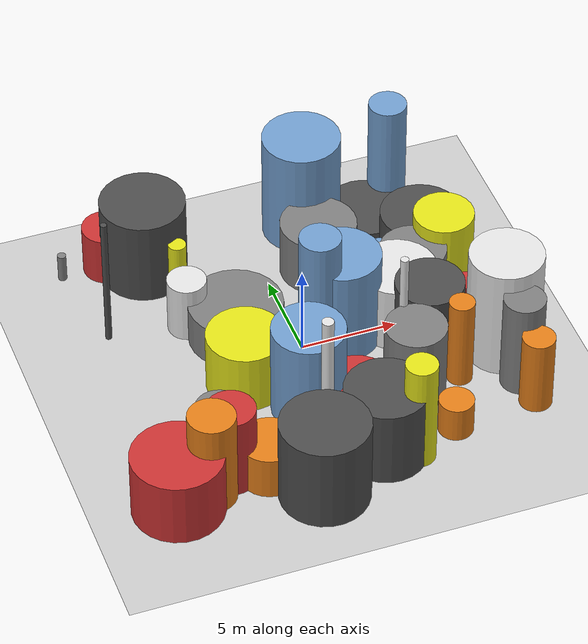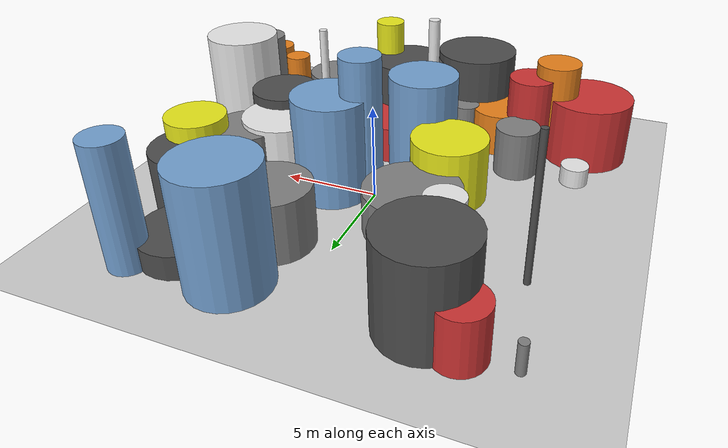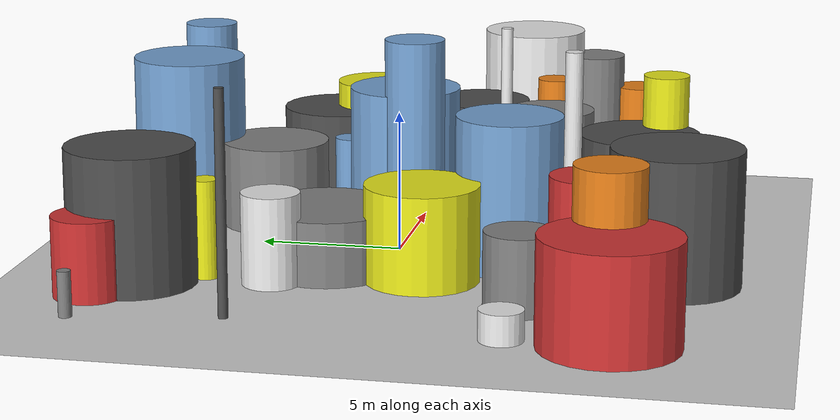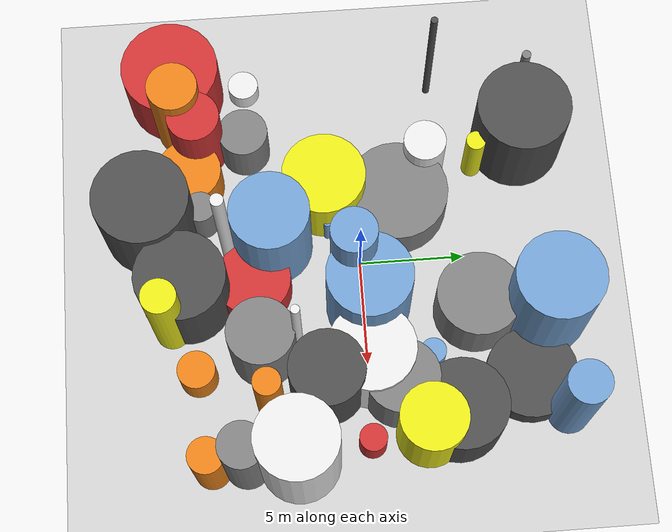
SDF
<?xml version='1.0'?>
<sdf version='1.6'>
  <world name='default'>
    <!-- Sun light -->
    <light name='sun' type='directional'>
      <cast_shadows>1</cast_shadows>
      <pose>0 0 10 0 0 0</pose>
      <diffuse>0.8 0.8 0.8 1</diffuse>
      <specular>0.2 0.2 0.2 1</specular>
      <attenuation>
        <range>1000</range>
        <constant>0.9</constant>
        <linear>0.01</linear>
        <quadratic>0.001</quadratic>
      </attenuation>
      <direction>-0.5 0.1 -0.9</direction>
    </light>

    <!-- Ground plane -->
    <model name='ground_plane'>
      <static>1</static>
      <link name='link'>
        <collision name='collision'>
          <geometry>
            <plane>
              <normal>0 0 1</normal>
              <size>100 100</size>
            </plane>
          </geometry>
          <surface>
            <contact>
              <collide_bitmask>65535</collide_bitmask>
              <ode/>
            </contact>
            <friction>
              <ode>
                <mu>100</mu>
                <mu2>50</mu2>
              </ode>
              <torsional><ode/></torsional>
            </friction>
            <bounce/>
          </surface>
          <max_contacts>10</max_contacts>
        </collision>
        <visual name='visual'>
          <cast_shadows>0</cast_shadows>
          <geometry>
            <plane>
              <normal>0 0 1</normal>
              <size>100 100</size>
            </plane>
          </geometry>
          <material>
            <script>
              <uri>file://media/materials/scripts/gazebo.material</uri>
              <n>Gazebo/Grey</n>
            </script>
          </material>
        </visual>
      </link>
    </model>

    <!-- Environment -->
    <magnetic_field>6e-06 2.3e-05 -4.2e-05</magnetic_field>
    <atmosphere type='adiabatic'/>
    <physics name='default_physics' default='0' type='ode'>
      <gravity>0 0 -9.8</gravity>
      <max_step_size>0.004</max_step_size>
      <real_time_factor>1</real_time_factor>
      <real_time_update_rate>250</real_time_update_rate>
    </physics>
    <scene>
      <ambient>0.4 0.4 0.4 1</ambient>
      <background>0.7 0.7 0.7 1</background>
      <shadows>1</shadows>
    </scene>
    <wind/>
    <spherical_coordinates>
      <surface_model>EARTH_WGS84</surface_model>
      <latitude_deg>0</latitude_deg>
      <longitude_deg>0</longitude_deg>
      <elevation>0</elevation>
      <heading_deg>0</heading_deg>
    </spherical_coordinates>

    <!-- ============ OBSTACLES (42) ============ -->
    <model name='obs_00'>
      <static>1</static>
      <link name='link'>
        <visual name='visual'>
          <geometry>
            <cylinder>
              <radius>2.0432</radius>
              <length>6.1090</length>
            </cylinder>
          </geometry>
          <material>
            <script>
              <n>Gazebo/Blue</n>
              <uri>file://media/materials/scripts/gazebo.material</uri>
            </script>
            <ambient>0.447 0.624 0.812 1</ambient>
          </material>
        </visual>
        <collision name='collision'>
          <geometry>
            <cylinder>
              <radius>2.0432</radius>
              <length>6.1090</length>
            </cylinder>
          </geometry>
          <max_contacts>10</max_contacts>
          <surface>
            <contact><ode/></contact>
            <bounce/>
            <friction>
              <ode><mu>1</mu><mu2>1</mu2></ode>
              <torsional><ode/></torsional>
            </friction>
          </surface>
        </collision>
      </link>
      <pose>3.0777 8.6087 3.0545 0 0 2.9096</pose>
    </model>

    <model name='obs_01'>
      <static>1</static>
      <link name='link'>
        <visual name='visual'>
          <geometry>
            <cylinder>
              <radius>1.7703</radius>
              <length>4.3012</length>
            </cylinder>
          </geometry>
          <material>
            <script>
              <n>Gazebo/DarkGrey</n>
              <uri>file://media/materials/scripts/gazebo.material</uri>
            </script>
            <ambient>0.3 0.3 0.3 1</ambient>
          </material>
        </visual>
        <collision name='collision'>
          <geometry>
            <cylinder>
              <radius>1.7703</radius>
              <length>4.3012</length>
            </cylinder>
          </geometry>
          <max_contacts>10</max_contacts>
          <surface>
            <contact><ode/></contact>
            <bounce/>
            <friction>
              <ode><mu>1</mu><mu2>1</mu2></ode>
              <torsional><ode/></torsional>
            </friction>
          </surface>
        </collision>
      </link>
      <pose>6.0342 -1.9698 2.1506 0 0 0.6632</pose>
    </model>

    <model name='obs_02'>
      <static>1</static>
      <link name='link'>
        <visual name='visual'>
          <geometry>
            <cylinder>
              <radius>0.1864</radius>
              <length>1.8004</length>
            </cylinder>
          </geometry>
          <material>
            <script>
              <n>Gazebo/Blue</n>
              <uri>file://media/materials/scripts/gazebo.material</uri>
            </script>
            <ambient>0.447 0.624 0.812 1</ambient>
          </material>
        </visual>
        <collision name='collision'>
          <geometry>
            <cylinder>
              <radius>0.1864</radius>
              <length>1.8004</length>
            </cylinder>
          </geometry>
          <max_contacts>10</max_contacts>
          <surface>
            <contact><ode/></contact>
            <bounce/>
            <friction>
              <ode><mu>1</mu><mu2>1</mu2></ode>
              <torsional><ode/></torsional>
            </friction>
          </surface>
        </collision>
      </link>
      <pose>-1.5843 -1.4482 0.9002 0 0 0.8063</pose>
    </model>

    <model name='obs_03'>
      <static>1</static>
      <link name='link'>
        <visual name='visual'>
          <geometry>
            <cylinder>
              <radius>1.9931</radius>
              <length>5.4755</length>
            </cylinder>
          </geometry>
          <material>
            <script>
              <n>Gazebo/Blue</n>
              <uri>file://media/materials/scripts/gazebo.material</uri>
            </script>
            <ambient>0.447 0.624 0.812 1</ambient>
          </material>
        </visual>
        <collision name='collision'>
          <geometry>
            <cylinder>
              <radius>1.9931</radius>
              <length>5.4755</length>
            </cylinder>
          </geometry>
          <max_contacts>10</max_contacts>
          <surface>
            <contact><ode/></contact>
            <bounce/>
            <friction>
              <ode><mu>1</mu><mu2>1</mu2></ode>
              <torsional><ode/></torsional>
            </friction>
          </surface>
        </collision>
      </link>
      <pose>2.2066 0.2264 2.7378 0 0 1.8847</pose>
    </model>

    <model name='obs_04'>
      <static>1</static>
      <link name='link'>
        <visual name='visual'>
          <geometry>
            <cylinder>
              <radius>1.5647</radius>
              <length>4.3162</length>
            </cylinder>
          </geometry>
          <material>
            <script>
              <n>Gazebo/Yellow</n>
              <uri>file://media/materials/scripts/gazebo.material</uri>
            </script>
            <ambient>0.9 0.9 0.1 1</ambient>
          </material>
        </visual>
        <collision name='collision'>
          <geometry>
            <cylinder>
              <radius>1.5647</radius>
              <length>4.3162</length>
            </cylinder>
          </geometry>
          <max_contacts>10</max_contacts>
          <surface>
            <contact><ode/></contact>
            <bounce/>
            <friction>
              <ode><mu>1</mu><mu2>1</mu2></ode>
              <torsional><ode/></torsional>
            </friction>
          </surface>
        </collision>
      </link>
      <pose>8.5777 2.5949 2.1581 0 0 2.2071</pose>
    </model>

    <model name='obs_05'>
      <static>1</static>
      <link name='link'>
        <visual name='visual'>
          <geometry>
            <cylinder>
              <radius>0.9963</radius>
              <length>6.4762</length>
            </cylinder>
          </geometry>
          <material>
            <script>
              <n>Gazebo/Blue</n>
              <uri>file://media/materials/scripts/gazebo.material</uri>
            </script>
            <ambient>0.447 0.624 0.812 1</ambient>
          </material>
        </visual>
        <collision name='collision'>
          <geometry>
            <cylinder>
              <radius>0.9963</radius>
              <length>6.4762</length>
            </cylinder>
          </geometry>
          <max_contacts>10</max_contacts>
          <surface>
            <contact><ode/></contact>
            <bounce/>
            <friction>
              <ode><mu>1</mu><mu2>1</mu2></ode>
              <torsional><ode/></torsional>
            </friction>
          </surface>
        </collision>
      </link>
      <pose>8.0127 9.1783 3.2381 0 0 2.4657</pose>
    </model>

    <model name='obs_06'>
      <static>1</static>
      <link name='link'>
        <visual name='visual'>
          <geometry>
            <cylinder>
              <radius>1.2454</radius>
              <length>4.6621</length>
            </cylinder>
          </geometry>
          <material>
            <script>
              <n>Gazebo/Red</n>
              <uri>file://media/materials/scripts/gazebo.material</uri>
            </script>
            <ambient>0.8 0.2 0.2 1</ambient>
          </material>
        </visual>
        <collision name='collision'>
          <geometry>
            <cylinder>
              <radius>1.2454</radius>
              <length>4.6621</length>
            </cylinder>
          </geometry>
          <max_contacts>10</max_contacts>
          <surface>
            <contact><ode/></contact>
            <bounce/>
            <friction>
              <ode><mu>1</mu><mu2>1</mu2></ode>
              <torsional><ode/></torsional>
            </friction>
          </surface>
        </collision>
      </link>
      <pose>-6.2945 -7.4068 2.3311 0 0 3.0447</pose>
    </model>

    <model name='obs_07'>
      <static>1</static>
      <link name='link'>
        <visual name='visual'>
          <geometry>
            <cylinder>
              <radius>1.0681</radius>
              <length>5.5024</length>
            </cylinder>
          </geometry>
          <material>
            <script>
              <n>Gazebo/Grey</n>
              <uri>file://media/materials/scripts/gazebo.material</uri>
            </script>
            <ambient>0.5 0.5 0.5 1</ambient>
          </material>
        </visual>
        <collision name='collision'>
          <geometry>
            <cylinder>
              <radius>1.0681</radius>
              <length>5.5024</length>
            </cylinder>
          </geometry>
          <max_contacts>10</max_contacts>
          <surface>
            <contact><ode/></contact>
            <bounce/>
            <friction>
              <ode><mu>1</mu><mu2>1</mu2></ode>
              <torsional><ode/></torsional>
            </friction>
          </surface>
        </collision>
      </link>
      <pose>9.4560 -5.8958 2.7512 0 0 0.5379</pose>
    </model>

    <model name='obs_08'>
      <static>1</static>
      <link name='link'>
        <visual name='visual'>
          <geometry>
            <cylinder>
              <radius>1.2245</radius>
              <length>2.7718</length>
            </cylinder>
          </geometry>
          <material>
            <script>
              <n>Gazebo/Red</n>
              <uri>file://media/materials/scripts/gazebo.material</uri>
            </script>
            <ambient>0.8 0.2 0.2 1</ambient>
          </material>
        </visual>
        <collision name='collision'>
          <geometry>
            <cylinder>
              <radius>1.2245</radius>
              <length>2.7718</length>
            </cylinder>
          </geometry>
          <max_contacts>10</max_contacts>
          <surface>
            <contact><ode/></contact>
            <bounce/>
            <friction>
              <ode><mu>1</mu><mu2>1</mu2></ode>
              <torsional><ode/></torsional>
            </friction>
          </surface>
        </collision>
      </link>
      <pose>-7.3971 9.0484 1.3859 0 0 0.8294</pose>
    </model>

    <model name='obs_09'>
      <static>1</static>
      <link name='link'>
        <visual name='visual'>
          <geometry>
            <cylinder>
              <radius>2.1305</radius>
              <length>4.3376</length>
            </cylinder>
          </geometry>
          <material>
            <script>
              <n>Gazebo/DarkGrey</n>
              <uri>file://media/materials/scripts/gazebo.material</uri>
            </script>
            <ambient>0.3 0.3 0.3 1</ambient>
          </material>
        </visual>
        <collision name='collision'>
          <geometry>
            <cylinder>
              <radius>2.1305</radius>
              <length>4.3376</length>
            </cylinder>
          </geometry>
          <max_contacts>10</max_contacts>
          <surface>
            <contact><ode/></contact>
            <bounce/>
            <friction>
              <ode><mu>1</mu><mu2>1</mu2></ode>
              <torsional><ode/></torsional>
            </friction>
          </surface>
        </collision>
      </link>
      <pose>1.3070 -8.3431 2.1688 0 0 1.8706</pose>
    </model>

    <model name='obs_10'>
      <static>1</static>
      <link name='link'>
        <visual name='visual'>
          <geometry>
            <cylinder>
              <radius>0.2274</radius>
              <length>1.5534</length>
            </cylinder>
          </geometry>
          <material>
            <script>
              <n>Gazebo/Grey</n>
              <uri>file://media/materials/scripts/gazebo.material</uri>
            </script>
            <ambient>0.5 0.5 0.5 1</ambient>
          </material>
        </visual>
        <collision name='collision'>
          <geometry>
            <cylinder>
              <radius>0.2274</radius>
              <length>1.5534</length>
            </cylinder>
          </geometry>
          <max_contacts>10</max_contacts>
          <surface>
            <contact><ode/></contact>
            <bounce/>
            <friction>
              <ode><mu>1</mu><mu2>1</mu2></ode>
              <torsional><ode/></torsional>
            </friction>
          </surface>
        </collision>
      </link>
      <pose>-9.7852 9.0387 0.7767 0 0 2.9240</pose>
    </model>

    <model name='obs_11'>
      <static>1</static>
      <link name='link'>
        <visual name='visual'>
          <geometry>
            <cylinder>
              <radius>2.3222</radius>
              <length>3.5939</length>
            </cylinder>
          </geometry>
          <material>
            <script>
              <n>Gazebo/Red</n>
              <uri>file://media/materials/scripts/gazebo.material</uri>
            </script>
            <ambient>0.8 0.2 0.2 1</ambient>
          </material>
        </visual>
        <collision name='collision'>
          <geometry>
            <cylinder>
              <radius>2.3222</radius>
              <length>3.5939</length>
            </cylinder>
          </geometry>
          <max_contacts>10</max_contacts>
          <surface>
            <contact><ode/></contact>
            <bounce/>
            <friction>
              <ode><mu>1</mu><mu2>1</mu2></ode>
              <torsional><ode/></torsional>
            </friction>
          </surface>
        </collision>
      </link>
      <pose>-9.3762 -8.5049 1.7970 0 0 0.3620</pose>
    </model>

    <model name='obs_12'>
      <static>1</static>
      <link name='link'>
        <visual name='visual'>
          <geometry>
            <cylinder>
              <radius>0.5927</radius>
              <length>2.7744</length>
            </cylinder>
          </geometry>
          <material>
            <script>
              <n>Gazebo/Blue</n>
              <uri>file://media/materials/scripts/gazebo.material</uri>
            </script>
            <ambient>0.447 0.624 0.812 1</ambient>
          </material>
        </visual>
        <collision name='collision'>
          <geometry>
            <cylinder>
              <radius>0.5927</radius>
              <length>2.7744</length>
            </cylinder>
          </geometry>
          <max_contacts>10</max_contacts>
          <surface>
            <contact><ode/></contact>
            <bounce/>
            <friction>
              <ode><mu>1</mu><mu2>1</mu2></ode>
              <torsional><ode/></torsional>
            </friction>
          </surface>
        </collision>
      </link>
      <pose>5.2472 2.9439 1.3872 0 0 0.2591</pose>
    </model>

    <model name='obs_13'>
      <static>1</static>
      <link name='link'>
        <visual name='visual'>
          <geometry>
            <cylinder>
              <radius>1.0165</radius>
              <length>3.1965</length>
            </cylinder>
          </geometry>
          <material>
            <script>
              <n>Gazebo/White</n>
              <uri>file://media/materials/scripts/gazebo.material</uri>
            </script>
            <ambient>0.9 0.9 0.9 1</ambient>
          </material>
        </visual>
        <collision name='collision'>
          <geometry>
            <cylinder>
              <radius>1.0165</radius>
              <length>3.1965</length>
            </cylinder>
          </geometry>
          <max_contacts>10</max_contacts>
          <surface>
            <contact><ode/></contact>
            <bounce/>
            <friction>
              <ode><mu>1</mu><mu2>1</mu2></ode>
              <torsional><ode/></torsional>
            </friction>
          </surface>
        </collision>
      </link>
      <pose>-4.9013 3.4440 1.5983 0 0 0.2281</pose>
    </model>

    <model name='obs_14'>
      <static>1</static>
      <link name='link'>
        <visual name='visual'>
          <geometry>
            <cylinder>
              <radius>0.4657</radius>
              <length>3.4565</length>
            </cylinder>
          </geometry>
          <material>
            <script>
              <n>Gazebo/Yellow</n>
              <uri>file://media/materials/scripts/gazebo.material</uri>
            </script>
            <ambient>0.9 0.9 0.1 1</ambient>
          </material>
        </visual>
        <collision name='collision'>
          <geometry>
            <cylinder>
              <radius>0.4657</radius>
              <length>3.4565</length>
            </cylinder>
          </geometry>
          <max_contacts>10</max_contacts>
          <surface>
            <contact><ode/></contact>
            <bounce/>
            <friction>
              <ode><mu>1</mu><mu2>1</mu2></ode>
              <torsional><ode/></torsional>
            </friction>
          </surface>
        </collision>
      </link>
      <pose>-4.5987 5.8251 1.7282 0 0 0.6776</pose>
    </model>

    <model name='obs_15'>
      <static>1</static>
      <link name='link'>
        <visual name='visual'>
          <geometry>
            <cylinder>
              <radius>1.8740</radius>
              <length>5.3431</length>
            </cylinder>
          </geometry>
          <material>
            <script>
              <n>Gazebo/Blue</n>
              <uri>file://media/materials/scripts/gazebo.material</uri>
            </script>
            <ambient>0.447 0.624 0.812 1</ambient>
          </material>
        </visual>
        <collision name='collision'>
          <geometry>
            <cylinder>
              <radius>1.8740</radius>
              <length>5.3431</length>
            </cylinder>
          </geometry>
          <max_contacts>10</max_contacts>
          <surface>
            <contact><ode/></contact>
            <bounce/>
            <friction>
              <ode><mu>1</mu><mu2>1</mu2></ode>
              <torsional><ode/></torsional>
            </friction>
          </surface>
        </collision>
      </link>
      <pose>-1.1404 -4.1009 2.6715 0 0 0.9661</pose>
    </model>

    <model name='obs_16'>
      <static>1</static>
      <link name='link'>
        <visual name='visual'>
          <geometry>
            <cylinder>
              <radius>1.9906</radius>
              <length>3.3716</length>
            </cylinder>
          </geometry>
          <material>
            <script>
              <n>Gazebo/Yellow</n>
              <uri>file://media/materials/scripts/gazebo.material</uri>
            </script>
            <ambient>0.9 0.9 0.1 1</ambient>
          </material>
        </visual>
        <collision name='collision'>
          <geometry>
            <cylinder>
              <radius>1.9906</radius>
              <length>3.3716</length>
            </cylinder>
          </geometry>
          <max_contacts>10</max_contacts>
          <surface>
            <contact><ode/></contact>
            <bounce/>
            <friction>
              <ode><mu>1</mu><mu2>1</mu2></ode>
              <torsional><ode/></torsional>
            </friction>
          </surface>
        </collision>
      </link>
      <pose>-3.5080 -1.4826 1.6858 0 0 2.1147</pose>
    </model>

    <model name='obs_17'>
      <static>1</static>
      <link name='link'>
        <visual name='visual'>
          <geometry>
            <cylinder>
              <radius>1.9854</radius>
              <length>3.1469</length>
            </cylinder>
          </geometry>
          <material>
            <script>
              <n>Gazebo/Grey</n>
              <uri>file://media/materials/scripts/gazebo.material</uri>
            </script>
            <ambient>0.5 0.5 0.5 1</ambient>
          </material>
        </visual>
        <collision name='collision'>
          <geometry>
            <cylinder>
              <radius>1.9854</radius>
              <length>3.1469</length>
            </cylinder>
          </geometry>
          <max_contacts>10</max_contacts>
          <surface>
            <contact><ode/></contact>
            <bounce/>
            <friction>
              <ode><mu>1</mu><mu2>1</mu2></ode>
              <torsional><ode/></torsional>
            </friction>
          </surface>
        </collision>
      </link>
      <pose>2.7992 5.2779 1.5734 0 0 2.4322</pose>
    </model>

    <model name='obs_18'>
      <static>1</static>
      <link name='link'>
        <visual name='visual'>
          <geometry>
            <cylinder>
              <radius>2.1057</radius>
              <length>3.3976</length>
            </cylinder>
          </geometry>
          <material>
            <script>
              <n>Gazebo/DarkGrey</n>
              <uri>file://media/materials/scripts/gazebo.material</uri>
            </script>
            <ambient>0.3 0.3 0.3 1</ambient>
          </material>
        </visual>
        <collision name='collision'>
          <geometry>
            <cylinder>
              <radius>2.1057</radius>
              <length>3.3976</length>
            </cylinder>
          </geometry>
          <max_contacts>10</max_contacts>
          <surface>
            <contact><ode/></contact>
            <bounce/>
            <friction>
              <ode><mu>1</mu><mu2>1</mu2></ode>
              <torsional><ode/></torsional>
            </friction>
          </surface>
        </collision>
      </link>
      <pose>7.9047 4.0172 1.6988 0 0 1.5369</pose>
    </model>

    <model name='obs_19'>
      <static>1</static>
      <link name='link'>
        <visual name='visual'>
          <geometry>
            <cylinder>
              <radius>1.1807</radius>
              <length>2.6748</length>
            </cylinder>
          </geometry>
          <material>
            <script>
              <n>Gazebo/Grey</n>
              <uri>file://media/materials/scripts/gazebo.material</uri>
            </script>
            <ambient>0.5 0.5 0.5 1</ambient>
          </material>
        </visual>
        <collision name='collision'>
          <geometry>
            <cylinder>
              <radius>1.1807</radius>
              <length>2.6748</length>
            </cylinder>
          </geometry>
          <max_contacts>10</max_contacts>
          <surface>
            <contact><ode/></contact>
            <bounce/>
            <friction>
              <ode><mu>1</mu><mu2>1</mu2></ode>
              <torsional><ode/></torsional>
            </friction>
          </surface>
        </collision>
      </link>
      <pose>-6.1655 -5.1960 1.3374 0 0 0.6298</pose>
    </model>

    <model name='obs_20'>
      <static>1</static>
      <link name='link'>
        <visual name='visual'>
          <geometry>
            <cylinder>
              <radius>0.8153</radius>
              <length>6.1588</length>
            </cylinder>
          </geometry>
          <material>
            <script>
              <n>Gazebo/Yellow</n>
              <uri>file://media/materials/scripts/gazebo.material</uri>
            </script>
            <ambient>0.9 0.9 0.1 1</ambient>
          </material>
        </visual>
        <collision name='collision'>
          <geometry>
            <cylinder>
              <radius>0.8153</radius>
              <length>6.1588</length>
            </cylinder>
          </geometry>
          <max_contacts>10</max_contacts>
          <surface>
            <contact><ode/></contact>
            <bounce/>
            <friction>
              <ode><mu>1</mu><mu2>1</mu2></ode>
              <torsional><ode/></torsional>
            </friction>
          </surface>
        </collision>
      </link>
      <pose>2.7895 -9.1240 3.0794 0 0 0.9517</pose>
    </model>

    <model name='obs_21'>
      <static>1</static>
      <link name='link'>
        <visual name='visual'>
          <geometry>
            <cylinder>
              <radius>1.9094</radius>
              <length>6.4029</length>
            </cylinder>
          </geometry>
          <material>
            <script>
              <n>Gazebo/White</n>
              <uri>file://media/materials/scripts/gazebo.material</uri>
            </script>
            <ambient>0.9 0.9 0.9 1</ambient>
          </material>
        </visual>
        <collision name='collision'>
          <geometry>
            <cylinder>
              <radius>1.9094</radius>
              <length>6.4029</length>
            </cylinder>
          </geometry>
          <max_contacts>10</max_contacts>
          <surface>
            <contact><ode/></contact>
            <bounce/>
            <friction>
              <ode><mu>1</mu><mu2>1</mu2></ode>
              <torsional><ode/></torsional>
            </friction>
          </surface>
        </collision>
      </link>
      <pose>9.4625 -3.4752 3.2015 0 0 0.3269</pose>
    </model>

    <model name='obs_22'>
      <static>1</static>
      <link name='link'>
        <visual name='visual'>
          <geometry>
            <cylinder>
              <radius>0.6537</radius>
              <length>5.0721</length>
            </cylinder>
          </geometry>
          <material>
            <script>
              <n>Gazebo/Orange</n>
              <uri>file://media/materials/scripts/gazebo.material</uri>
            </script>
            <ambient>0.9 0.5 0.1 1</ambient>
          </material>
        </visual>
        <collision name='collision'>
          <geometry>
            <cylinder>
              <radius>0.6537</radius>
              <length>5.0721</length>
            </cylinder>
          </geometry>
          <max_contacts>10</max_contacts>
          <surface>
            <contact><ode/></contact>
            <bounce/>
            <friction>
              <ode><mu>1</mu><mu2>1</mu2></ode>
              <torsional><ode/></torsional>
            </friction>
          </surface>
        </collision>
      </link>
      <pose>6.6671 -4.6529 2.5360 0 0 0.5393</pose>
    </model>

    <model name='obs_23'>
      <static>1</static>
      <link name='link'>
        <visual name='visual'>
          <geometry>
            <cylinder>
              <radius>0.2107</radius>
              <length>7.3904</length>
            </cylinder>
          </geometry>
          <material>
            <script>
              <n>Gazebo/White</n>
              <uri>file://media/materials/scripts/gazebo.material</uri>
            </script>
            <ambient>0.9 0.9 0.9 1</ambient>
          </material>
        </visual>
        <collision name='collision'>
          <geometry>
            <cylinder>
              <radius>0.2107</radius>
              <length>7.3904</length>
            </cylinder>
          </geometry>
          <max_contacts>10</max_contacts>
          <surface>
            <contact><ode/></contact>
            <bounce/>
            <friction>
              <ode><mu>1</mu><mu2>1</mu2></ode>
              <torsional><ode/></torsional>
            </friction>
          </surface>
        </collision>
      </link>
      <pose>4.1703 -3.1747 3.6952 0 0 3.0241</pose>
    </model>

    <model name='obs_24'>
      <static>1</static>
      <link name='link'>
        <visual name='visual'>
          <geometry>
            <cylinder>
              <radius>0.7399</radius>
              <length>1.0232</length>
            </cylinder>
          </geometry>
          <material>
            <script>
              <n>Gazebo/White</n>
              <uri>file://media/materials/scripts/gazebo.material</uri>
            </script>
            <ambient>0.9 0.9 0.9 1</ambient>
          </material>
        </visual>
        <collision name='collision'>
          <geometry>
            <cylinder>
              <radius>0.7399</radius>
              <length>1.0232</length>
            </cylinder>
          </geometry>
          <max_contacts>10</max_contacts>
          <surface>
            <contact><ode/></contact>
            <bounce/>
            <friction>
              <ode><mu>1</mu><mu2>1</mu2></ode>
              <torsional><ode/></torsional>
            </friction>
          </surface>
        </collision>
      </link>
      <pose>-9.3796 -5.1335 0.5116 0 0 1.0069</pose>
    </model>

    <model name='obs_25'>
      <static>1</static>
      <link name='link'>
        <visual name='visual'>
          <geometry>
            <cylinder>
              <radius>1.7750</radius>
              <length>2.0332</length>
            </cylinder>
          </geometry>
          <material>
            <script>
              <n>Gazebo/Red</n>
              <uri>file://media/materials/scripts/gazebo.material</uri>
            </script>
            <ambient>0.8 0.2 0.2 1</ambient>
          </material>
        </visual>
        <collision name='collision'>
          <geometry>
            <cylinder>
              <radius>1.7750</radius>
              <length>2.0332</length>
            </cylinder>
          </geometry>
          <max_contacts>10</max_contacts>
          <surface>
            <contact><ode/></contact>
            <bounce/>
            <friction>
              <ode><mu>1</mu><mu2>1</mu2></ode>
              <torsional><ode/></torsional>
            </friction>
          </surface>
        </collision>
      </link>
      <pose>1.0102 -5.1159 1.0166 0 0 1.2914</pose>
    </model>

    <model name='obs_26'>
      <static>1</static>
      <link name='link'>
        <visual name='visual'>
          <geometry>
            <cylinder>
              <radius>2.2234</radius>
              <length>4.7854</length>
            </cylinder>
          </geometry>
          <material>
            <script>
              <n>Gazebo/DarkGrey</n>
              <uri>file://media/materials/scripts/gazebo.material</uri>
            </script>
            <ambient>0.3 0.3 0.3 1</ambient>
          </material>
        </visual>
        <collision name='collision'>
          <geometry>
            <cylinder>
              <radius>2.2234</radius>
              <length>4.7854</length>
            </cylinder>
          </geometry>
          <max_contacts>10</max_contacts>
          <surface>
            <contact><ode/></contact>
            <bounce/>
            <friction>
              <ode><mu>1</mu><mu2>1</mu2></ode>
              <torsional><ode/></torsional>
            </friction>
          </surface>
        </collision>
      </link>
      <pose>-5.6692 8.0975 2.3927 0 0 1.1516</pose>
    </model>

    <model name='obs_27'>
      <static>1</static>
      <link name='link'>
        <visual name='visual'>
          <geometry>
            <cylinder>
              <radius>0.1673</radius>
              <length>7.5824</length>
            </cylinder>
          </geometry>
          <material>
            <script>
              <n>Gazebo/DarkGrey</n>
              <uri>file://media/materials/scripts/gazebo.material</uri>
            </script>
            <ambient>0.3 0.3 0.3 1</ambient>
          </material>
        </visual>
        <collision name='collision'>
          <geometry>
            <cylinder>
              <radius>0.1673</radius>
              <length>7.5824</length>
            </cylinder>
          </geometry>
          <max_contacts>10</max_contacts>
          <surface>
            <contact><ode/></contact>
            <bounce/>
            <friction>
              <ode><mu>1</mu><mu2>1</mu2></ode>
              <torsional><ode/></torsional>
            </friction>
          </surface>
        </collision>
      </link>
      <pose>-8.9100 3.9967 3.7912 0 0 2.0217</pose>
    </model>

    <model name='obs_28'>
      <static>1</static>
      <link name='link'>
        <visual name='visual'>
          <geometry>
            <cylinder>
              <radius>1.2007</radius>
              <length>5.3733</length>
            </cylinder>
          </geometry>
          <material>
            <script>
              <n>Gazebo/Orange</n>
              <uri>file://media/materials/scripts/gazebo.material</uri>
            </script>
            <ambient>0.9 0.5 0.1 1</ambient>
          </material>
        </visual>
        <collision name='collision'>
          <geometry>
            <cylinder>
              <radius>1.2007</radius>
              <length>5.3733</length>
            </cylinder>
          </geometry>
          <max_contacts>10</max_contacts>
          <surface>
            <contact><ode/></contact>
            <bounce/>
            <friction>
              <ode><mu>1</mu><mu2>1</mu2></ode>
              <torsional><ode/></torsional>
            </friction>
          </surface>
        </collision>
      </link>
      <pose>-7.5416 -8.2638 2.6866 0 0 1.7876</pose>
    </model>

    <model name='obs_29'>
      <static>1</static>
      <link name='link'>
        <visual name='visual'>
          <geometry>
            <cylinder>
              <radius>2.4358</radius>
              <length>2.2677</length>
            </cylinder>
          </geometry>
          <material>
            <script>
              <n>Gazebo/Grey</n>
              <uri>file://media/materials/scripts/gazebo.material</uri>
            </script>
            <ambient>0.5 0.5 0.5 1</ambient>
          </material>
        </visual>
        <collision name='collision'>
          <geometry>
            <cylinder>
              <radius>2.4358</radius>
              <length>2.2677</length>
            </cylinder>
          </geometry>
          <max_contacts>10</max_contacts>
          <surface>
            <contact><ode/></contact>
            <bounce/>
            <friction>
              <ode><mu>1</mu><mu2>1</mu2></ode>
              <torsional><ode/></torsional>
            </friction>
          </surface>
        </collision>
      </link>
      <pose>-2.8249 1.9654 1.1338 0 0 0.7275</pose>
    </model>

    <model name='obs_30'>
      <static>1</static>
      <link name='link'>
        <visual name='visual'>
          <geometry>
            <cylinder>
              <radius>2.1472</radius>
              <length>1.2834</length>
            </cylinder>
          </geometry>
          <material>
            <script>
              <n>Gazebo/DarkGrey</n>
              <uri>file://media/materials/scripts/gazebo.material</uri>
            </script>
            <ambient>0.3 0.3 0.3 1</ambient>
          </material>
        </visual>
        <collision name='collision'>
          <geometry>
            <cylinder>
              <radius>2.1472</radius>
              <length>1.2834</length>
            </cylinder>
          </geometry>
          <max_contacts>10</max_contacts>
          <surface>
            <contact><ode/></contact>
            <bounce/>
            <friction>
              <ode><mu>1</mu><mu2>1</mu2></ode>
              <torsional><ode/></torsional>
            </friction>
          </surface>
        </collision>
      </link>
      <pose>6.2273 7.5348 0.6417 0 0 2.0936</pose>
    </model>

    <model name='obs_31'>
      <static>1</static>
      <link name='link'>
        <visual name='visual'>
          <geometry>
            <cylinder>
              <radius>0.8386</radius>
              <length>4.3124</length>
            </cylinder>
          </geometry>
          <material>
            <script>
              <n>Gazebo/Orange</n>
              <uri>file://media/materials/scripts/gazebo.material</uri>
            </script>
            <ambient>0.9 0.5 0.1 1</ambient>
          </material>
        </visual>
        <collision name='collision'>
          <geometry>
            <cylinder>
              <radius>0.8386</radius>
              <length>4.3124</length>
            </cylinder>
          </geometry>
          <max_contacts>10</max_contacts>
          <surface>
            <contact><ode/></contact>
            <bounce/>
            <friction>
              <ode><mu>1</mu><mu2>1</mu2></ode>
              <torsional><ode/></torsional>
            </friction>
          </surface>
        </collision>
      </link>
      <pose>9.5815 -7.5136 2.1562 0 0 3.0774</pose>
    </model>

    <model name='obs_32'>
      <static>1</static>
      <link name='link'>
        <visual name='visual'>
          <geometry>
            <cylinder>
              <radius>0.7498</radius>
              <length>2.4123</length>
            </cylinder>
          </geometry>
          <material>
            <script>
              <n>Gazebo/Grey</n>
              <uri>file://media/materials/scripts/gazebo.material</uri>
            </script>
            <ambient>0.5 0.5 0.5 1</ambient>
          </material>
        </visual>
        <collision name='collision'>
          <geometry>
            <cylinder>
              <radius>0.7498</radius>
              <length>2.4123</length>
            </cylinder>
          </geometry>
          <max_contacts>10</max_contacts>
          <surface>
            <contact><ode/></contact>
            <bounce/>
            <friction>
              <ode><mu>1</mu><mu2>1</mu2></ode>
              <torsional><ode/></torsional>
            </friction>
          </surface>
        </collision>
      </link>
      <pose>-2.6100 -7.4228 1.2061 0 0 0.0939</pose>
    </model>

    <model name='obs_33'>
      <static>1</static>
      <link name='link'>
        <visual name='visual'>
          <geometry>
            <cylinder>
              <radius>2.2700</radius>
              <length>4.7883</length>
            </cylinder>
          </geometry>
          <material>
            <script>
              <n>Gazebo/DarkGrey</n>
              <uri>file://media/materials/scripts/gazebo.material</uri>
            </script>
            <ambient>0.3 0.3 0.3 1</ambient>
          </material>
        </visual>
        <collision name='collision'>
          <geometry>
            <cylinder>
              <radius>2.2700</radius>
              <length>4.7883</length>
            </cylinder>
          </geometry>
          <max_contacts>10</max_contacts>
          <surface>
            <contact><ode/></contact>
            <bounce/>
            <friction>
              <ode><mu>1</mu><mu2>1</mu2></ode>
              <torsional><ode/></torsional>
            </friction>
          </surface>
        </collision>
      </link>
      <pose>-2.4346 -9.9685 2.3941 0 0 2.6901</pose>
    </model>

    <model name='obs_34'>
      <static>1</static>
      <link name='link'>
        <visual name='visual'>
          <geometry>
            <cylinder>
              <radius>0.6493</radius>
              <length>1.8752</length>
            </cylinder>
          </geometry>
          <material>
            <script>
              <n>Gazebo/Red</n>
              <uri>file://media/materials/scripts/gazebo.material</uri>
            </script>
            <ambient>0.8 0.2 0.2 1</ambient>
          </material>
        </visual>
        <collision name='collision'>
          <geometry>
            <cylinder>
              <radius>0.6493</radius>
              <length>1.8752</length>
            </cylinder>
          </geometry>
          <max_contacts>10</max_contacts>
          <surface>
            <contact><ode/></contact>
            <bounce/>
            <friction>
              <ode><mu>1</mu><mu2>1</mu2></ode>
              <torsional><ode/></torsional>
            </friction>
          </surface>
        </collision>
      </link>
      <pose>8.8610 -0.0673 0.9376 0 0 2.5376</pose>
    </model>

    <model name='obs_35'>
      <static>1</static>
      <link name='link'>
        <visual name='visual'>
          <geometry>
            <cylinder>
              <radius>0.8931</radius>
              <length>1.9475</length>
            </cylinder>
          </geometry>
          <material>
            <script>
              <n>Gazebo/Orange</n>
              <uri>file://media/materials/scripts/gazebo.material</uri>
            </script>
            <ambient>0.9 0.5 0.1 1</ambient>
          </material>
        </visual>
        <collision name='collision'>
          <geometry>
            <cylinder>
              <radius>0.8931</radius>
              <length>1.9475</length>
            </cylinder>
          </geometry>
          <max_contacts>10</max_contacts>
          <surface>
            <contact><ode/></contact>
            <bounce/>
            <friction>
              <ode><mu>1</mu><mu2>1</mu2></ode>
              <torsional><ode/></torsional>
            </friction>
          </surface>
        </collision>
      </link>
      <pose>5.1536 -7.9635 0.9737 0 0 2.3043</pose>
    </model>

    <model name='obs_36'>
      <static>1</static>
      <link name='link'>
        <visual name='visual'>
          <geometry>
            <cylinder>
              <radius>1.5752</radius>
              <length>4.4312</length>
            </cylinder>
          </geometry>
          <material>
            <script>
              <n>Gazebo/Grey</n>
              <uri>file://media/materials/scripts/gazebo.material</uri>
            </script>
            <ambient>0.5 0.5 0.5 1</ambient>
          </material>
        </visual>
        <collision name='collision'>
          <geometry>
            <cylinder>
              <radius>1.5752</radius>
              <length>4.4312</length>
            </cylinder>
          </geometry>
          <max_contacts>10</max_contacts>
          <surface>
            <contact><ode/></contact>
            <bounce/>
            <friction>
              <ode><mu>1</mu><mu2>1</mu2></ode>
              <torsional><ode/></torsional>
            </friction>
          </surface>
        </collision>
      </link>
      <pose>4.1938 -4.8277 2.2156 0 0 1.5345</pose>
    </model>

    <model name='obs_37'>
      <static>1</static>
      <link name='link'>
        <visual name='visual'>
          <geometry>
            <cylinder>
              <radius>2.0471</radius>
              <length>3.7912</length>
            </cylinder>
          </geometry>
          <material>
            <script>
              <n>Gazebo/White</n>
              <uri>file://media/materials/scripts/gazebo.material</uri>
            </script>
            <ambient>0.9 0.9 0.9 1</ambient>
          </material>
        </visual>
        <collision name='collision'>
          <geometry>
            <cylinder>
              <radius>2.0471</radius>
              <length>3.7912</length>
            </cylinder>
          </geometry>
          <max_contacts>10</max_contacts>
          <surface>
            <contact><ode/></contact>
            <bounce/>
            <friction>
              <ode><mu>1</mu><mu2>1</mu2></ode>
              <torsional><ode/></torsional>
            </friction>
          </surface>
        </collision>
      </link>
      <pose>5.1088 0.1259 1.8956 0 0 1.6887</pose>
    </model>

    <model name='obs_38'>
      <static>1</static>
      <link name='link'>
        <visual name='visual'>
          <geometry>
            <cylinder>
              <radius>0.3055</radius>
              <length>7.6052</length>
            </cylinder>
          </geometry>
          <material>
            <script>
              <n>Gazebo/White</n>
              <uri>file://media/materials/scripts/gazebo.material</uri>
            </script>
            <ambient>0.9 0.9 0.9 1</ambient>
          </material>
        </visual>
        <collision name='collision'>
          <geometry>
            <cylinder>
              <radius>0.3055</radius>
              <length>7.6052</length>
            </cylinder>
          </geometry>
          <max_contacts>10</max_contacts>
          <surface>
            <contact><ode/></contact>
            <bounce/>
            <friction>
              <ode><mu>1</mu><mu2>1</mu2></ode>
              <torsional><ode/></torsional>
            </friction>
          </surface>
        </collision>
      </link>
      <pose>-0.9447 -6.2674 3.8026 0 0 0.6344</pose>
    </model>

    <model name='obs_39'>
      <static>1</static>
      <link name='link'>
        <visual name='visual'>
          <geometry>
            <cylinder>
              <radius>1.7204</radius>
              <length>3.5451</length>
            </cylinder>
          </geometry>
          <material>
            <script>
              <n>Gazebo/Grey</n>
              <uri>file://media/materials/scripts/gazebo.material</uri>
            </script>
            <ambient>0.5 0.5 0.5 1</ambient>
          </material>
        </visual>
        <collision name='collision'>
          <geometry>
            <cylinder>
              <radius>1.7204</radius>
              <length>3.5451</length>
            </cylinder>
          </geometry>
          <max_contacts>10</max_contacts>
          <surface>
            <contact><ode/></contact>
            <bounce/>
            <friction>
              <ode><mu>1</mu><mu2>1</mu2></ode>
              <torsional><ode/></torsional>
            </friction>
          </surface>
        </collision>
      </link>
      <pose>6.4665 1.4073 1.7726 0 0 2.3137</pose>
    </model>

    <model name='obs_40'>
      <static>1</static>
      <link name='link'>
        <visual name='visual'>
          <geometry>
            <cylinder>
              <radius>1.5294</radius>
              <length>2.3828</length>
            </cylinder>
          </geometry>
          <material>
            <script>
              <n>Gazebo/Orange</n>
              <uri>file://media/materials/scripts/gazebo.material</uri>
            </script>
            <ambient>0.9 0.5 0.1 1</ambient>
          </material>
        </visual>
        <collision name='collision'>
          <geometry>
            <cylinder>
              <radius>1.5294</radius>
              <length>2.3828</length>
            </cylinder>
          </geometry>
          <max_contacts>10</max_contacts>
          <surface>
            <contact><ode/></contact>
            <bounce/>
            <friction>
              <ode><mu>1</mu><mu2>1</mu2></ode>
              <torsional><ode/></torsional>
            </friction>
          </surface>
        </collision>
      </link>
      <pose>-4.5087 -7.8696 1.1914 0 0 2.0247</pose>
    </model>

    <model name='obs_41'>
      <static>1</static>
      <link name='link'>
        <visual name='visual'>
          <geometry>
            <cylinder>
              <radius>1.0660</radius>
              <length>7.4961</length>
            </cylinder>
          </geometry>
          <material>
            <script>
              <n>Gazebo/Blue</n>
              <uri>file://media/materials/scripts/gazebo.material</uri>
            </script>
            <ambient>0.447 0.624 0.812 1</ambient>
          </material>
        </visual>
        <collision name='collision'>
          <geometry>
            <cylinder>
              <radius>1.0660</radius>
              <length>7.4961</length>
            </cylinder>
          </geometry>
          <max_contacts>10</max_contacts>
          <surface>
            <contact><ode/></contact>
            <bounce/>
            <friction>
              <ode><mu>1</mu><mu2>1</mu2></ode>
              <torsional><ode/></torsional>
            </friction>
          </surface>
        </collision>
      </link>
      <pose>0.8116 -0.3899 3.7480 0 0 0.9492</pose>
    </model>

    <!-- GUI camera -->
    <gui fullscreen='0'>
      <camera name='user_camera'>
        <pose>-15 0 18 0 0.85 0.15</pose>
        <view_controller>orbit</view_controller>
        <projection_type>perspective</projection_type>
      </camera>
    </gui>
  </world>
</sdf>
